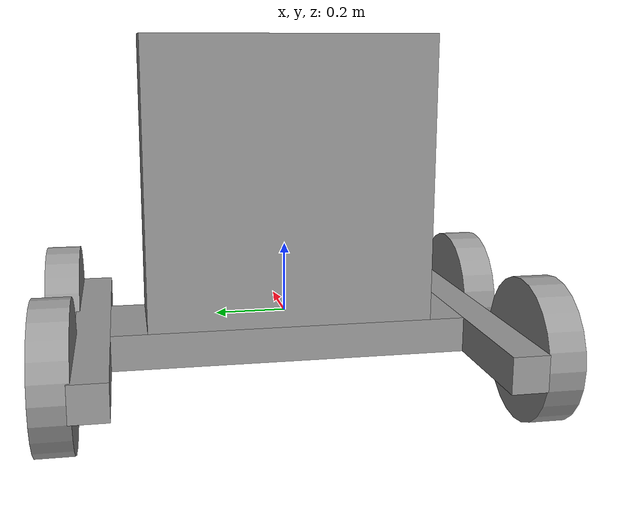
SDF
<?xml version='1.0'?>
<sdf version='1.6'>
  <model name='humanoid'>
    <link name='link_1'>
      <inertial>
        <mass>1</mass>
        <inertia>
          <ixx>0.166667</ixx>
          <ixy>0</ixy>
          <ixz>0</ixz>
          <iyy>0.166667</iyy>
          <iyz>0</iyz>
          <izz>0.166667</izz>
        </inertia>
        <pose frame=''>0 0 0 0 -0 0</pose>
      </inertial>
      <pose frame=''>0 0.002509 -0.05625 0 -0 0</pose>
      <gravity>1</gravity>
      <self_collide>0</self_collide>
      <kinematic>0</kinematic>
      <enable_wind>0</enable_wind>
      <visual name='visual'>
        <pose frame=''>0 0 0 0 -0 0</pose>
        <geometry>
          <box>
            <size>0.3 1 0.1</size>
          </box>
        </geometry>
        <material>
          <lighting>1</lighting>
          <script>
            <uri>file://media/materials/scripts/gazebo.material</uri>
            <name>Gazebo/Grey</name>
          </script>
          <shader type='pixel'>
            <normal_map>__default__</normal_map>
          </shader>
          <ambient>0.3 0.3 0.3 1</ambient>
          <diffuse>0.7 0.7 0.7 1</diffuse>
          <specular>0.01 0.01 0.01 1</specular>
          <emissive>0 0 0 1</emissive>
        </material>
        <transparency>0</transparency>
        <cast_shadows>1</cast_shadows>
      </visual>
      <collision name='collision'>
        <laser_retro>0</laser_retro>
        <max_contacts>10</max_contacts>
        <pose frame=''>0 0 0 0 -0 0</pose>
        <geometry>
          <box>
            <size>0.3 1 0.1</size>
          </box>
        </geometry>
        <surface>
          <friction>
            <ode>
              <mu>1</mu>
              <mu2>1</mu2>
              <fdir1>0 0 0</fdir1>
              <slip1>0</slip1>
              <slip2>0</slip2>
            </ode>
            <torsional>
              <coefficient>1</coefficient>
              <patch_radius>0</patch_radius>
              <surface_radius>0</surface_radius>
              <use_patch_radius>1</use_patch_radius>
              <ode>
                <slip>0</slip>
              </ode>
            </torsional>
          </friction>
          <bounce>
            <restitution_coefficient>0</restitution_coefficient>
            <threshold>1e+06</threshold>
          </bounce>
          <contact>
            <collide_without_contact>0</collide_without_contact>
            <collide_without_contact_bitmask>1</collide_without_contact_bitmask>
            <collide_bitmask>1</collide_bitmask>
            <ode>
              <soft_cfm>0</soft_cfm>
              <soft_erp>0.2</soft_erp>
              <kp>1e+13</kp>
              <kd>1</kd>
              <max_vel>0.01</max_vel>
              <min_depth>0</min_depth>
            </ode>
            <bullet>
              <split_impulse>1</split_impulse>
              <split_impulse_penetration_threshold>-0.01</split_impulse_penetration_threshold>
              <soft_cfm>0</soft_cfm>
              <soft_erp>0.2</soft_erp>
              <kp>1e+13</kp>
              <kd>1</kd>
            </bullet>
          </contact>
        </surface>
      </collision>
    </link>
    <link name='link_2_clone_clone_0'>
      <inertial>
        <mass>1</mass>
        <inertia>
          <ixx>0.145833</ixx>
          <ixy>0</ixy>
          <ixz>0</ixz>
          <iyy>0.145833</iyy>
          <iyz>0</iyz>
          <izz>0.125</izz>
        </inertia>
        <pose frame=''>0 0 0 0 -0 0</pose>
      </inertial>
      <pose frame=''>0.3 0.64249 -0.05625 1.5707 -0 0</pose>
      <gravity>1</gravity>
      <self_collide>0</self_collide>
      <kinematic>0</kinematic>
      <enable_wind>0</enable_wind>
      <visual name='visual'>
        <pose frame=''>0 0 0 0 -0 0</pose>
        <geometry>
          <cylinder>
            <radius>0.2</radius>
            <length>0.1</length>
          </cylinder>
        </geometry>
        <material>
          <lighting>1</lighting>
          <script>
            <uri>file://media/materials/scripts/gazebo.material</uri>
            <name>Gazebo/Grey</name>
          </script>
          <shader type='pixel'>
            <normal_map>__default__</normal_map>
          </shader>
          <ambient>0.3 0.3 0.3 1</ambient>
          <diffuse>0.7 0.7 0.7 1</diffuse>
          <specular>0.01 0.01 0.01 1</specular>
          <emissive>0 0 0 1</emissive>
        </material>
        <transparency>0</transparency>
        <cast_shadows>1</cast_shadows>
      </visual>
      <collision name='collision'>
        <laser_retro>0</laser_retro>
        <max_contacts>10</max_contacts>
        <pose frame=''>0 0 0 0 -0 0</pose>
        <geometry>
          <cylinder>
            <radius>0.2</radius>
            <length>0.1</length>
          </cylinder>
        </geometry>
        <surface>
          <friction>
            <ode>
              <mu>1</mu>
              <mu2>1</mu2>
              <fdir1>0 0 0</fdir1>
              <slip1>0</slip1>
              <slip2>0</slip2>
            </ode>
            <torsional>
              <coefficient>1</coefficient>
              <patch_radius>0</patch_radius>
              <surface_radius>0</surface_radius>
              <use_patch_radius>1</use_patch_radius>
              <ode>
                <slip>0</slip>
              </ode>
            </torsional>
          </friction>
          <bounce>
            <restitution_coefficient>0</restitution_coefficient>
            <threshold>1e+06</threshold>
          </bounce>
          <contact>
            <collide_without_contact>0</collide_without_contact>
            <collide_without_contact_bitmask>1</collide_without_contact_bitmask>
            <collide_bitmask>1</collide_bitmask>
            <ode>
              <soft_cfm>0</soft_cfm>
              <soft_erp>0.2</soft_erp>
              <kp>1e+13</kp>
              <kd>1</kd>
              <max_vel>0.01</max_vel>
              <min_depth>0</min_depth>
            </ode>
            <bullet>
              <split_impulse>1</split_impulse>
              <split_impulse_penetration_threshold>-0.01</split_impulse_penetration_threshold>
              <soft_cfm>0</soft_cfm>
              <soft_erp>0.2</soft_erp>
              <kp>1e+13</kp>
              <kd>1</kd>
            </bullet>
          </contact>
        </surface>
      </collision>
    </link>
    <link name='link_2_clone_clone_0_clone'>
      <inertial>
        <mass>1</mass>
        <inertia>
          <ixx>0.145833</ixx>
          <ixy>0</ixy>
          <ixz>0</ixz>
          <iyy>0.145833</iyy>
          <iyz>0</iyz>
          <izz>0.125</izz>
        </inertia>
        <pose frame=''>0 0 0 0 -0 0</pose>
      </inertial>
      <pose frame=''>-0.3 0.64249 -0.05625 1.5707 -0 0</pose>
      <gravity>1</gravity>
      <self_collide>0</self_collide>
      <kinematic>0</kinematic>
      <enable_wind>0</enable_wind>
      <visual name='visual'>
        <pose frame=''>0 0 0 0 -0 0</pose>
        <geometry>
          <cylinder>
            <radius>0.2</radius>
            <length>0.1</length>
          </cylinder>
        </geometry>
        <material>
          <lighting>1</lighting>
          <script>
            <uri>file://media/materials/scripts/gazebo.material</uri>
            <name>Gazebo/Grey</name>
          </script>
          <shader type='pixel'>
            <normal_map>__default__</normal_map>
          </shader>
          <ambient>0.3 0.3 0.3 1</ambient>
          <diffuse>0.7 0.7 0.7 1</diffuse>
          <specular>0.01 0.01 0.01 1</specular>
          <emissive>0 0 0 1</emissive>
        </material>
        <transparency>0</transparency>
        <cast_shadows>1</cast_shadows>
      </visual>
      <collision name='collision'>
        <laser_retro>0</laser_retro>
        <max_contacts>10</max_contacts>
        <pose frame=''>0 0 0 0 -0 0</pose>
        <geometry>
          <cylinder>
            <radius>0.2</radius>
            <length>0.1</length>
          </cylinder>
        </geometry>
        <surface>
          <friction>
            <ode>
              <mu>1</mu>
              <mu2>1</mu2>
              <fdir1>0 0 0</fdir1>
              <slip1>0</slip1>
              <slip2>0</slip2>
            </ode>
            <torsional>
              <coefficient>1</coefficient>
              <patch_radius>0</patch_radius>
              <surface_radius>0</surface_radius>
              <use_patch_radius>1</use_patch_radius>
              <ode>
                <slip>0</slip>
              </ode>
            </torsional>
          </friction>
          <bounce>
            <restitution_coefficient>0</restitution_coefficient>
            <threshold>1e+06</threshold>
          </bounce>
          <contact>
            <collide_without_contact>0</collide_without_contact>
            <collide_without_contact_bitmask>1</collide_without_contact_bitmask>
            <collide_bitmask>1</collide_bitmask>
            <ode>
              <soft_cfm>0</soft_cfm>
              <soft_erp>0.2</soft_erp>
              <kp>1e+13</kp>
              <kd>1</kd>
              <max_vel>0.01</max_vel>
              <min_depth>0</min_depth>
            </ode>
            <bullet>
              <split_impulse>1</split_impulse>
              <split_impulse_penetration_threshold>-0.01</split_impulse_penetration_threshold>
              <soft_cfm>0</soft_cfm>
              <soft_erp>0.2</soft_erp>
              <kp>1e+13</kp>
              <kd>1</kd>
            </bullet>
          </contact>
        </surface>
      </collision>
    </link>
    <link name='link_2_clone_clone_0_clone_0'>
      <inertial>
        <mass>1</mass>
        <inertia>
          <ixx>0.145833</ixx>
          <ixy>0</ixy>
          <ixz>0</ixz>
          <iyy>0.145833</iyy>
          <iyz>0</iyz>
          <izz>0.125</izz>
        </inertia>
        <pose frame=''>0 0 0 0 -0 0</pose>
      </inertial>
      <pose frame=''>-0.3 -0.64751 -0.05625 1.5707 -0 0</pose>
      <gravity>1</gravity>
      <self_collide>0</self_collide>
      <kinematic>0</kinematic>
      <enable_wind>0</enable_wind>
      <visual name='visual'>
        <pose frame=''>0 0 0 0 -0 0</pose>
        <geometry>
          <cylinder>
            <radius>0.2</radius>
            <length>0.1</length>
          </cylinder>
        </geometry>
        <material>
          <lighting>1</lighting>
          <script>
            <uri>file://media/materials/scripts/gazebo.material</uri>
            <name>Gazebo/Grey</name>
          </script>
          <shader type='pixel'>
            <normal_map>__default__</normal_map>
          </shader>
          <ambient>0.3 0.3 0.3 1</ambient>
          <diffuse>0.7 0.7 0.7 1</diffuse>
          <specular>0.01 0.01 0.01 1</specular>
          <emissive>0 0 0 1</emissive>
        </material>
        <transparency>0</transparency>
        <cast_shadows>1</cast_shadows>
      </visual>
      <collision name='collision'>
        <laser_retro>0</laser_retro>
        <max_contacts>10</max_contacts>
        <pose frame=''>0 0 0 0 -0 0</pose>
        <geometry>
          <cylinder>
            <radius>0.2</radius>
            <length>0.1</length>
          </cylinder>
        </geometry>
        <surface>
          <friction>
            <ode>
              <mu>1</mu>
              <mu2>1</mu2>
              <fdir1>0 0 0</fdir1>
              <slip1>0</slip1>
              <slip2>0</slip2>
            </ode>
            <torsional>
              <coefficient>1</coefficient>
              <patch_radius>0</patch_radius>
              <surface_radius>0</surface_radius>
              <use_patch_radius>1</use_patch_radius>
              <ode>
                <slip>0</slip>
              </ode>
            </torsional>
          </friction>
          <bounce>
            <restitution_coefficient>0</restitution_coefficient>
            <threshold>1e+06</threshold>
          </bounce>
          <contact>
            <collide_without_contact>0</collide_without_contact>
            <collide_without_contact_bitmask>1</collide_without_contact_bitmask>
            <collide_bitmask>1</collide_bitmask>
            <ode>
              <soft_cfm>0</soft_cfm>
              <soft_erp>0.2</soft_erp>
              <kp>1e+13</kp>
              <kd>1</kd>
              <max_vel>0.01</max_vel>
              <min_depth>0</min_depth>
            </ode>
            <bullet>
              <split_impulse>1</split_impulse>
              <split_impulse_penetration_threshold>-0.01</split_impulse_penetration_threshold>
              <soft_cfm>0</soft_cfm>
              <soft_erp>0.2</soft_erp>
              <kp>1e+13</kp>
              <kd>1</kd>
            </bullet>
          </contact>
        </surface>
      </collision>
    </link>
    <link name='link_2_clone_clone_0_clone_1'>
      <inertial>
        <mass>1</mass>
        <inertia>
          <ixx>0.145833</ixx>
          <ixy>0</ixy>
          <ixz>0</ixz>
          <iyy>0.145833</iyy>
          <iyz>0</iyz>
          <izz>0.125</izz>
        </inertia>
        <pose frame=''>0 0 0 0 -0 0</pose>
      </inertial>
      <pose frame=''>0.3 -0.64751 -0.05625 1.5707 -0 0</pose>
      <gravity>1</gravity>
      <self_collide>0</self_collide>
      <kinematic>0</kinematic>
      <enable_wind>0</enable_wind>
      <visual name='visual'>
        <pose frame=''>0 0 0 0 -0 0</pose>
        <geometry>
          <cylinder>
            <radius>0.2</radius>
            <length>0.1</length>
          </cylinder>
        </geometry>
        <material>
          <lighting>1</lighting>
          <script>
            <uri>file://media/materials/scripts/gazebo.material</uri>
            <name>Gazebo/Grey</name>
          </script>
          <shader type='pixel'>
            <normal_map>__default__</normal_map>
          </shader>
          <ambient>0.3 0.3 0.3 1</ambient>
          <diffuse>0.7 0.7 0.7 1</diffuse>
          <specular>0.01 0.01 0.01 1</specular>
          <emissive>0 0 0 1</emissive>
        </material>
        <transparency>0</transparency>
        <cast_shadows>1</cast_shadows>
      </visual>
      <collision name='collision'>
        <laser_retro>0</laser_retro>
        <max_contacts>10</max_contacts>
        <pose frame=''>0 0 0 0 -0 0</pose>
        <geometry>
          <cylinder>
            <radius>0.2</radius>
            <length>0.1</length>
          </cylinder>
        </geometry>
        <surface>
          <friction>
            <ode>
              <mu>1</mu>
              <mu2>1</mu2>
              <fdir1>0 0 0</fdir1>
              <slip1>0</slip1>
              <slip2>0</slip2>
            </ode>
            <torsional>
              <coefficient>1</coefficient>
              <patch_radius>0</patch_radius>
              <surface_radius>0</surface_radius>
              <use_patch_radius>1</use_patch_radius>
              <ode>
                <slip>0</slip>
              </ode>
            </torsional>
          </friction>
          <bounce>
            <restitution_coefficient>0</restitution_coefficient>
            <threshold>1e+06</threshold>
          </bounce>
          <contact>
            <collide_without_contact>0</collide_without_contact>
            <collide_without_contact_bitmask>1</collide_without_contact_bitmask>
            <collide_bitmask>1</collide_bitmask>
            <ode>
              <soft_cfm>0</soft_cfm>
              <soft_erp>0.2</soft_erp>
              <kp>1e+13</kp>
              <kd>1</kd>
              <max_vel>0.01</max_vel>
              <min_depth>0</min_depth>
            </ode>
            <bullet>
              <split_impulse>1</split_impulse>
              <split_impulse_penetration_threshold>-0.01</split_impulse_penetration_threshold>
              <soft_cfm>0</soft_cfm>
              <soft_erp>0.2</soft_erp>
              <kp>1e+13</kp>
              <kd>1</kd>
            </bullet>
          </contact>
        </surface>
      </collision>
    </link>
    <link name='link_5'>
      <inertial>
        <mass>1</mass>
        <inertia>
          <ixx>0.166667</ixx>
          <ixy>0</ixy>
          <ixz>0</ixz>
          <iyy>0.166667</iyy>
          <iyz>0</iyz>
          <izz>0.166667</izz>
        </inertia>
        <pose frame=''>0 0 0 0 -0 0</pose>
      </inertial>
      <pose frame=''>0 0.002509 0.39375 0 -0 0</pose>
      <gravity>1</gravity>
      <self_collide>0</self_collide>
      <kinematic>0</kinematic>
      <enable_wind>0</enable_wind>
      <visual name='visual'>
        <pose frame=''>0 0 0 0 -0 0</pose>
        <geometry>
          <box>
            <size>0.3 0.8 0.8</size>
          </box>
        </geometry>
        <material>
          <lighting>1</lighting>
          <script>
            <uri>file://media/materials/scripts/gazebo.material</uri>
            <name>Gazebo/Grey</name>
          </script>
          <shader type='pixel'>
            <normal_map>__default__</normal_map>
          </shader>
          <ambient>0.3 0.3 0.3 1</ambient>
          <diffuse>0.7 0.7 0.7 1</diffuse>
          <specular>0.01 0.01 0.01 1</specular>
          <emissive>0 0 0 1</emissive>
        </material>
        <transparency>0</transparency>
        <cast_shadows>1</cast_shadows>
      </visual>
      <collision name='collision'>
        <laser_retro>0</laser_retro>
        <max_contacts>10</max_contacts>
        <pose frame=''>0 0 0 0 -0 0</pose>
        <geometry>
          <box>
            <size>0.3 0.8 0.8</size>
          </box>
        </geometry>
        <surface>
          <friction>
            <ode>
              <mu>1</mu>
              <mu2>1</mu2>
              <fdir1>0 0 0</fdir1>
              <slip1>0</slip1>
              <slip2>0</slip2>
            </ode>
            <torsional>
              <coefficient>1</coefficient>
              <patch_radius>0</patch_radius>
              <surface_radius>0</surface_radius>
              <use_patch_radius>1</use_patch_radius>
              <ode>
                <slip>0</slip>
              </ode>
            </torsional>
          </friction>
          <bounce>
            <restitution_coefficient>0</restitution_coefficient>
            <threshold>1e+06</threshold>
          </bounce>
          <contact>
            <collide_without_contact>0</collide_without_contact>
            <collide_without_contact_bitmask>1</collide_without_contact_bitmask>
            <collide_bitmask>1</collide_bitmask>
            <ode>
              <soft_cfm>0</soft_cfm>
              <soft_erp>0.2</soft_erp>
              <kp>1e+13</kp>
              <kd>1</kd>
              <max_vel>0.01</max_vel>
              <min_depth>0</min_depth>
            </ode>
            <bullet>
              <split_impulse>1</split_impulse>
              <split_impulse_penetration_threshold>-0.01</split_impulse_penetration_threshold>
              <soft_cfm>0</soft_cfm>
              <soft_erp>0.2</soft_erp>
              <kp>1e+13</kp>
              <kd>1</kd>
            </bullet>
          </contact>
        </surface>
      </collision>
    </link>
    <link name='link_6'>
      <inertial>
        <mass>1</mass>
        <inertia>
          <ixx>0.166667</ixx>
          <ixy>0</ixy>
          <ixz>0</ixz>
          <iyy>0.166667</iyy>
          <iyz>0</iyz>
          <izz>0.166667</izz>
        </inertia>
        <pose frame=''>0 0 0 0 -0 0</pose>
      </inertial>
      <pose frame=''>0 0.55251 -0.05625 0 -0 0</pose>
      <gravity>1</gravity>
      <self_collide>0</self_collide>
      <kinematic>0</kinematic>
      <enable_wind>0</enable_wind>
      <visual name='visual'>
        <pose frame=''>0 0 0 0 -0 0</pose>
        <geometry>
          <box>
            <size>1 0.1 0.1</size>
          </box>
        </geometry>
        <material>
          <lighting>1</lighting>
          <script>
            <uri>file://media/materials/scripts/gazebo.material</uri>
            <name>Gazebo/Grey</name>
          </script>
          <shader type='pixel'>
            <normal_map>__default__</normal_map>
          </shader>
          <ambient>0.3 0.3 0.3 1</ambient>
          <diffuse>0.7 0.7 0.7 1</diffuse>
          <specular>0.01 0.01 0.01 1</specular>
          <emissive>0 0 0 1</emissive>
        </material>
        <transparency>0</transparency>
        <cast_shadows>1</cast_shadows>
      </visual>
      <collision name='collision'>
        <laser_retro>0</laser_retro>
        <max_contacts>10</max_contacts>
        <pose frame=''>0 0 0 0 -0 0</pose>
        <geometry>
          <box>
            <size>1 0.1 0.1</size>
          </box>
        </geometry>
        <surface>
          <friction>
            <ode>
              <mu>1</mu>
              <mu2>1</mu2>
              <fdir1>0 0 0</fdir1>
              <slip1>0</slip1>
              <slip2>0</slip2>
            </ode>
            <torsional>
              <coefficient>1</coefficient>
              <patch_radius>0</patch_radius>
              <surface_radius>0</surface_radius>
              <use_patch_radius>1</use_patch_radius>
              <ode>
                <slip>0</slip>
              </ode>
            </torsional>
          </friction>
          <bounce>
            <restitution_coefficient>0</restitution_coefficient>
            <threshold>1e+06</threshold>
          </bounce>
          <contact>
            <collide_without_contact>0</collide_without_contact>
            <collide_without_contact_bitmask>1</collide_without_contact_bitmask>
            <collide_bitmask>1</collide_bitmask>
            <ode>
              <soft_cfm>0</soft_cfm>
              <soft_erp>0.2</soft_erp>
              <kp>1e+13</kp>
              <kd>1</kd>
              <max_vel>0.01</max_vel>
              <min_depth>0</min_depth>
            </ode>
            <bullet>
              <split_impulse>1</split_impulse>
              <split_impulse_penetration_threshold>-0.01</split_impulse_penetration_threshold>
              <soft_cfm>0</soft_cfm>
              <soft_erp>0.2</soft_erp>
              <kp>1e+13</kp>
              <kd>1</kd>
            </bullet>
          </contact>
        </surface>
      </collision>
    </link>
    <link name='link_6_clone'>
      <inertial>
        <mass>1</mass>
        <inertia>
          <ixx>0.166667</ixx>
          <ixy>0</ixy>
          <ixz>0</ixz>
          <iyy>0.166667</iyy>
          <iyz>0</iyz>
          <izz>0.166667</izz>
        </inertia>
        <pose frame=''>0 0 0 0 -0 0</pose>
      </inertial>
      <pose frame=''>0 -0.547491 -0.05625 0 -0 0</pose>
      <gravity>1</gravity>
      <self_collide>0</self_collide>
      <kinematic>0</kinematic>
      <enable_wind>0</enable_wind>
      <visual name='visual'>
        <pose frame=''>0 0 0 0 -0 0</pose>
        <geometry>
          <box>
            <size>1 0.1 0.1</size>
          </box>
        </geometry>
        <material>
          <lighting>1</lighting>
          <script>
            <uri>file://media/materials/scripts/gazebo.material</uri>
            <name>Gazebo/Grey</name>
          </script>
          <shader type='pixel'>
            <normal_map>__default__</normal_map>
          </shader>
          <ambient>0.3 0.3 0.3 1</ambient>
          <diffuse>0.7 0.7 0.7 1</diffuse>
          <specular>0.01 0.01 0.01 1</specular>
          <emissive>0 0 0 1</emissive>
        </material>
        <transparency>0</transparency>
        <cast_shadows>1</cast_shadows>
      </visual>
      <collision name='collision'>
        <laser_retro>0</laser_retro>
        <max_contacts>10</max_contacts>
        <pose frame=''>0 0 0 0 -0 0</pose>
        <geometry>
          <box>
            <size>1 0.1 0.1</size>
          </box>
        </geometry>
        <surface>
          <friction>
            <ode>
              <mu>1</mu>
              <mu2>1</mu2>
              <fdir1>0 0 0</fdir1>
              <slip1>0</slip1>
              <slip2>0</slip2>
            </ode>
            <torsional>
              <coefficient>1</coefficient>
              <patch_radius>0</patch_radius>
              <surface_radius>0</surface_radius>
              <use_patch_radius>1</use_patch_radius>
              <ode>
                <slip>0</slip>
              </ode>
            </torsional>
          </friction>
          <bounce>
            <restitution_coefficient>0</restitution_coefficient>
            <threshold>1e+06</threshold>
          </bounce>
          <contact>
            <collide_without_contact>0</collide_without_contact>
            <collide_without_contact_bitmask>1</collide_without_contact_bitmask>
            <collide_bitmask>1</collide_bitmask>
            <ode>
              <soft_cfm>0</soft_cfm>
              <soft_erp>0.2</soft_erp>
              <kp>1e+13</kp>
              <kd>1</kd>
              <max_vel>0.01</max_vel>
              <min_depth>0</min_depth>
            </ode>
            <bullet>
              <split_impulse>1</split_impulse>
              <split_impulse_penetration_threshold>-0.01</split_impulse_penetration_threshold>
              <soft_cfm>0</soft_cfm>
              <soft_erp>0.2</soft_erp>
              <kp>1e+13</kp>
              <kd>1</kd>
            </bullet>
          </contact>
        </surface>
      </collision>
    </link>
    <joint name='link_1_JOINT_4' type='revolute'>
      <parent>link_1</parent>
      <child>link_5</child>
      <pose frame=''>0 0 0 0 -0 0</pose>
      <axis>
        <xyz>1 0 0</xyz>
        <use_parent_model_frame>0</use_parent_model_frame>
        <limit>
          <lower>-1.79769e+308</lower>
          <upper>1.79769e+308</upper>
          <effort>-1</effort>
          <velocity>-1</velocity>
        </limit>
        <dynamics>
          <spring_reference>0</spring_reference>
          <spring_stiffness>0</spring_stiffness>
          <damping>0</damping>
        </dynamics>
      </axis>
      <physics>
        <ode>
          <limit>
            <cfm>0</cfm>
            <erp>0.2</erp>
          </limit>
          <suspension>
            <cfm>0</cfm>
            <erp>0.2</erp>
          </suspension>
        </ode>
      </physics>
    </joint>
    <joint name='link_1_JOINT_5' type='revolute'>
      <parent>link_1</parent>
      <child>link_6</child>
      <pose frame=''>0 0 0 0 -0 0</pose>
      <axis>
        <xyz>1 0 0</xyz>
        <use_parent_model_frame>0</use_parent_model_frame>
        <limit>
          <lower>-1.79769e+308</lower>
          <upper>1.79769e+308</upper>
          <effort>-1</effort>
          <velocity>-1</velocity>
        </limit>
        <dynamics>
          <spring_reference>0</spring_reference>
          <spring_stiffness>0</spring_stiffness>
          <damping>0</damping>
        </dynamics>
      </axis>
      <physics>
        <ode>
          <limit>
            <cfm>0</cfm>
            <erp>0.2</erp>
          </limit>
          <suspension>
            <cfm>0</cfm>
            <erp>0.2</erp>
          </suspension>
        </ode>
      </physics>
    </joint>
    <joint name='link_1_JOINT_6' type='revolute'>
      <parent>link_1</parent>
      <child>link_6_clone</child>
      <pose frame=''>0 0 0 0 -0 0</pose>
      <axis>
        <xyz>1 0 0</xyz>
        <use_parent_model_frame>0</use_parent_model_frame>
        <limit>
          <lower>-1.79769e+308</lower>
          <upper>1.79769e+308</upper>
          <effort>-1</effort>
          <velocity>-1</velocity>
        </limit>
        <dynamics>
          <spring_reference>0</spring_reference>
          <spring_stiffness>0</spring_stiffness>
          <damping>0</damping>
        </dynamics>
      </axis>
      <physics>
        <ode>
          <limit>
            <cfm>0</cfm>
            <erp>0.2</erp>
          </limit>
          <suspension>
            <cfm>0</cfm>
            <erp>0.2</erp>
          </suspension>
        </ode>
      </physics>
    </joint>
    <joint name='link_6_JOINT_7' type='revolute'>
      <parent>link_6</parent>
      <child>link_2_clone_clone_0</child>
      <pose frame=''>0 0 0 0 -0 0</pose>
      <axis>
        <xyz>1 0 0</xyz>
        <use_parent_model_frame>0</use_parent_model_frame>
        <limit>
          <lower>-1.79769e+308</lower>
          <upper>1.79769e+308</upper>
          <effort>-1</effort>
          <velocity>-1</velocity>
        </limit>
        <dynamics>
          <spring_reference>0</spring_reference>
          <spring_stiffness>0</spring_stiffness>
          <damping>0</damping>
        </dynamics>
      </axis>
      <physics>
        <ode>
          <limit>
            <cfm>0</cfm>
            <erp>0.2</erp>
          </limit>
          <suspension>
            <cfm>0</cfm>
            <erp>0.2</erp>
          </suspension>
        </ode>
      </physics>
    </joint>
    <joint name='link_6_JOINT_8' type='revolute'>
      <parent>link_6</parent>
      <child>link_2_clone_clone_0_clone</child>
      <pose frame=''>0 0 0 0 -0 0</pose>
      <axis>
        <xyz>1 0 0</xyz>
        <use_parent_model_frame>0</use_parent_model_frame>
        <limit>
          <lower>-1.79769e+308</lower>
          <upper>1.79769e+308</upper>
          <effort>-1</effort>
          <velocity>-1</velocity>
        </limit>
        <dynamics>
          <spring_reference>0</spring_reference>
          <spring_stiffness>0</spring_stiffness>
          <damping>0</damping>
        </dynamics>
      </axis>
      <physics>
        <ode>
          <limit>
            <cfm>0</cfm>
            <erp>0.2</erp>
          </limit>
          <suspension>
            <cfm>0</cfm>
            <erp>0.2</erp>
          </suspension>
        </ode>
      </physics>
    </joint>
    <joint name='link_6_clone_JOINT_10' type='revolute'>
      <parent>link_6_clone</parent>
      <child>link_2_clone_clone_0_clone_1</child>
      <pose frame=''>0 0 0 0 -0 0</pose>
      <axis>
        <xyz>1 0 0</xyz>
        <use_parent_model_frame>0</use_parent_model_frame>
        <limit>
          <lower>-1.79769e+308</lower>
          <upper>1.79769e+308</upper>
          <effort>-1</effort>
          <velocity>-1</velocity>
        </limit>
        <dynamics>
          <spring_reference>0</spring_reference>
          <spring_stiffness>0</spring_stiffness>
          <damping>0</damping>
        </dynamics>
      </axis>
      <physics>
        <ode>
          <limit>
            <cfm>0</cfm>
            <erp>0.2</erp>
          </limit>
          <suspension>
            <cfm>0</cfm>
            <erp>0.2</erp>
          </suspension>
        </ode>
      </physics>
    </joint>
    <joint name='link_6_clone_JOINT_9' type='revolute'>
      <parent>link_6_clone</parent>
      <child>link_2_clone_clone_0_clone_0</child>
      <pose frame=''>0 0 0 0 -0 0</pose>
      <axis>
        <xyz>1 0 0</xyz>
        <use_parent_model_frame>0</use_parent_model_frame>
        <limit>
          <lower>-1.79769e+308</lower>
          <upper>1.79769e+308</upper>
          <effort>-1</effort>
          <velocity>-1</velocity>
        </limit>
        <dynamics>
          <spring_reference>0</spring_reference>
          <spring_stiffness>0</spring_stiffness>
          <damping>0</damping>
        </dynamics>
      </axis>
      <physics>
        <ode>
          <limit>
            <cfm>0</cfm>
            <erp>0.2</erp>
          </limit>
          <suspension>
            <cfm>0</cfm>
            <erp>0.2</erp>
          </suspension>
        </ode>
      </physics>
    </joint>
    <static>0</static>
    <allow_auto_disable>1</allow_auto_disable>
  </model>
</sdf>
